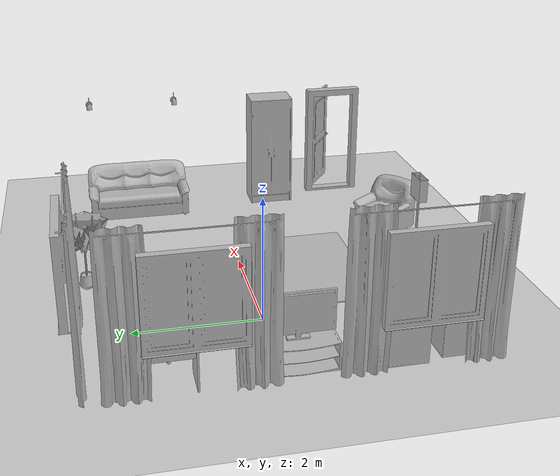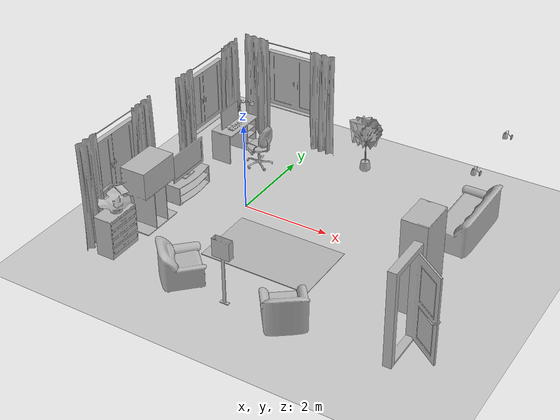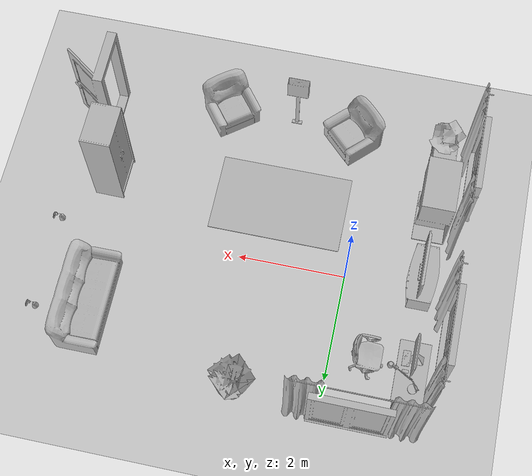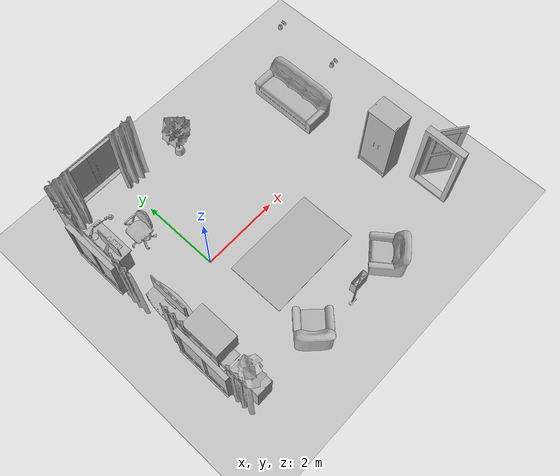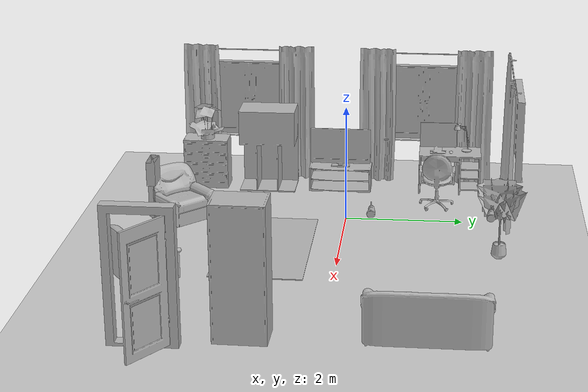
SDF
<sdf version="1.4">
 <world name="default">
  <light name="sun" type="directional">
   <pose>0 0 10 0 -0 0</pose>
   <diffuse>0.8 0.8 0.8 1</diffuse>
   <specular>0.2 0.2 0.2 1</specular>
   <attenuation>
    <range>1000</range>
    <constant>0.9</constant>
    <linear>0.01</linear>
    <quadratic>0.001</quadratic>
   </attenuation>
   <direction>-0.5 0.1 -0.9</direction>
  </light>
  <model name="ground_plane">
   <static>1</static>
   <link name="link">
    <collision name="collision">
     <geometry><plane><normal>0 0 1</normal><size>100 100</size></plane></geometry>
     <surface><friction><ode><mu>100</mu><mu2>50</mu2></ode></friction></surface>
    </collision>
    <visual name="visual">
     <cast_shadows>0</cast_shadows>
     <geometry><plane><normal>0 0 1</normal><size>100 100</size></plane></geometry>
     <material>
      <script><uri>file://media/materials/scripts/gazebo.material</uri><name>Gazebo/Grey</name></script>
     </material>
    </visual>
    <velocity_decay><linear>0</linear><angular>0</angular></velocity_decay>
   </link>
  </model>
  <physics type="ode">
   <max_step_size>0.001</max_step_size>
   <real_time_factor>1</real_time_factor>
   <real_time_update_rate>1000</real_time_update_rate>
   <gravity>0 0 -9.8</gravity>
  </physics>
  <scene><ambient>0.4 0.4 0.4 1</ambient><background>0.7 0.7 0.7 1</background><shadows>1</shadows></scene>
  <spherical_coordinates>
   <surface_model>EARTH_WGS84</surface_model>
   <latitude_deg>0</latitude_deg>
   <longitude_deg>0</longitude_deg>
   <elevation>0</elevation>
   <heading_deg>0</heading_deg>
  </spherical_coordinates>
  <model name="209_0">
   <pose>-1.93955 -1.90846 0.83 0 -0 0</pose>
   <static>1</static>
   <link name="link">
    <collision name="collision"><geometry><box><size>0.175 1.4 2</size></box></geometry></collision>
    <visual name="visual"><geometry><mesh><uri>model://209/209.dae</uri></mesh></geometry></visual>
    <velocity_decay><linear>0</linear><angular>0</angular></velocity_decay>
   </link>
  </model>
  <model name="209_1">
   <pose>-1.92823 1.25954 0.83 0 -0 0</pose>
   <static>1</static>
   <link name="link">
    <collision name="collision"><geometry><box><size>0.175 1.4 2</size></box></geometry></collision>
    <visual name="visual"><geometry><mesh><uri>model://209/209.dae</uri></mesh></geometry></visual>
    <velocity_decay><linear>0</linear><angular>0</angular></velocity_decay>
   </link>
  </model>
  <model name="209_2">
   <pose>-0.505384 2.90712 0.83 0 0 -1.5708</pose>
   <static>1</static>
   <link name="link">
    <collision name="collision"><geometry><box><size>0.175 1.4 2</size></box></geometry></collision>
    <visual name="visual"><geometry><mesh><uri>model://209/209.dae</uri></mesh></geometry></visual>
    <velocity_decay><linear>0</linear><angular>0</angular></velocity_decay>
   </link>
  </model>
  <model name="692_0">
   <pose>4.47065 1.49954 0.03 0 -0 3.14159</pose>
   <static>1</static>
   <link name="link">
    <collision name="collision"><geometry><box><size>0.900053 1.88 2</size></box></geometry></collision>
    <visual name="visual"><geometry><mesh><uri>model://692/692.dae</uri></mesh></geometry></visual>
    <velocity_decay><linear>0</linear><angular>0</angular></velocity_decay>
   </link>
  </model>
  <model name="693_0">
   <pose>2.78589 -2.91689 0.03 0 -0 2.22294</pose>
   <static>1</static>
   <link name="link">
    <collision name="collision"><geometry><box><size>0.900053 0.9 2</size></box></geometry></collision>
    <visual name="visual"><geometry><mesh><uri>model://693/693.dae</uri></mesh></geometry></visual>
    <velocity_decay><linear>0</linear><angular>0</angular></velocity_decay>
   </link>
  </model>
  <model name="693_1">
   <pose>0.352531 -2.82249 0.03 0 -0 0.785398</pose>
   <static>1</static>
   <link name="link">
    <collision name="collision"><geometry><box><size>0.900053 0.9 2</size></box></geometry></collision>
    <visual name="visual"><geometry><mesh><uri>model://693/693.dae</uri></mesh></geometry></visual>
    <velocity_decay><linear>0</linear><angular>0</angular></velocity_decay>
   </link>
  </model>
  <model name="214_0">
   <pose>4.97311 -2.47246 0 0 0 -3.14159</pose>
   <static>1</static>
   <link name="link">
    <collision name="collision"><geometry><box><size>0.829998 1.03985 2</size></box></geometry></collision>
    <visual name="visual"><geometry><mesh><uri>model://214/214.dae</uri></mesh></geometry></visual>
    <velocity_decay><linear>0</linear><angular>0</angular></velocity_decay>
   </link>
  </model>
  <model name="266_0">
   <pose>4.67201 -1.1144 0.03 0 -0 3.13142</pose>
   <static>1</static>
   <link name="link">
    <collision name="collision"><geometry><box><size>0.550716 0.8 2</size></box></geometry></collision>
    <visual name="visual"><geometry><mesh><uri>model://266/266.dae</uri></mesh></geometry></visual>
    <velocity_decay><linear>0</linear><angular>0</angular></velocity_decay>
   </link>
  </model>
  <model name="397_0">
   <pose>-1.38039 -2.64046 0.03 0 -0 0</pose>
   <static>1</static>
   <link name="link">
    <collision name="collision"><geometry><box><size>0.449634 0.79977 2</size></box></geometry></collision>
    <visual name="visual"><geometry><mesh><uri>model://397/397.dae</uri></mesh></geometry></visual>
    <velocity_decay><linear>0</linear><angular>0</angular></velocity_decay>
   </link>
  </model>
  <model name="625_0">
   <pose>-1.84387 -1.90846 0.06 0 -0 0</pose>
   <static>1</static>
   <link name="link">
    <collision name="collision"><geometry><box><size>0.189588 2.419 2</size></box></geometry></collision>
    <visual name="visual"><geometry><mesh><uri>model://625/625.dae</uri></mesh></geometry></visual>
    <velocity_decay><linear>0</linear><angular>0</angular></velocity_decay>
   </link>
  </model>
  <model name="625_1">
   <pose>-1.82987 1.29554 0.06 0 -0 0</pose>
   <static>1</static>
   <link name="link">
    <collision name="collision"><geometry><box><size>0.189588 2.419 2</size></box></geometry></collision>
    <visual name="visual"><geometry><mesh><uri>model://625/625.dae</uri></mesh></geometry></visual>
    <velocity_decay><linear>0</linear><angular>0</angular></velocity_decay>
   </link>
  </model>
  <model name="625_2">
   <pose>-0.577381 2.77942 0.06 0 0 -1.5708</pose>
   <static>1</static>
   <link name="link">
    <collision name="collision"><geometry><box><size>0.189588 2.419 2</size></box></geometry></collision>
    <visual name="visual"><geometry><mesh><uri>model://625/625.dae</uri></mesh></geometry></visual>
    <velocity_decay><linear>0</linear><angular>0</angular></velocity_decay>
   </link>
  </model>
  <model name="198_0">
   <pose>-1.39983 -0.204463 0.03 0 0 -3.14159</pose>
   <static>1</static>
   <link name="link">
    <collision name="collision"><geometry><box><size>0.533104 1.11 2</size></box></geometry></collision>
    <visual name="visual"><geometry><mesh><uri>model://198/198.dae</uri></mesh></geometry></visual>
    <velocity_decay><linear>0</linear><angular>0</angular></velocity_decay>
   </link>
  </model>
  <model name="105_0">
   <pose>-1.44139 1.76354 0.03 0 -0 0</pose>
   <static>1</static>
   <link name="link">
    <collision name="collision"><geometry><box><size>0.55 1.1 2</size></box></geometry></collision>
    <visual name="visual"><geometry><mesh><uri>model://105/105.dae</uri></mesh></geometry></visual>
    <velocity_decay><linear>0</linear><angular>0</angular></velocity_decay>
   </link>
  </model>
  <model name="335_0">
   <pose>-0.673384 1.54754 0.03 0 -0 3.1311</pose>
   <static>1</static>
   <link name="link">
    <collision name="collision"><geometry><box><size>0.599914 0.62 2</size></box></geometry></collision>
    <visual name="visual"><geometry><mesh><uri>model://335/335.dae</uri></mesh></geometry></visual>
    <velocity_decay><linear>0</linear><angular>0</angular></velocity_decay>
   </link>
  </model>
  <model name="113_0">
   <pose>-1.35469 -0.204463 0.468594 0 -0 0</pose>
   <static>1</static>
   <link name="link">
    <collision name="collision"><geometry><box><size>0.1 1.07995 2</size></box></geometry></collision>
    <visual name="visual"><geometry><mesh><uri>model://113/113.dae</uri></mesh></geometry></visual>
    <velocity_decay><linear>0</linear><angular>0</angular></velocity_decay>
   </link>
  </model>
  <model name="189_0">
   <pose>-1.42938 1.54754 0.799689 0 -0 0</pose>
   <static>1</static>
   <link name="link">
    <collision name="collision"><geometry><box><size>0.359507 0.6495 2</size></box></geometry></collision>
    <visual name="visual"><geometry><mesh><uri>model://189/189.dae</uri></mesh></geometry></visual>
    <velocity_decay><linear>0</linear><angular>0</angular></velocity_decay>
   </link>
  </model>
  <model name="238_0">
   <pose>1.45559 -1.21548 0.03 0 0 -1.5708</pose>
   <static>1</static>
   <link name="link">
    <collision name="collision"><geometry><box><size>1.5 2.5 0</size></box></geometry></collision>
    <visual name="visual"><geometry><mesh><uri>model://238/238.dae</uri></mesh></geometry></visual>
    <velocity_decay><linear>0</linear><angular>0</angular></velocity_decay>
   </link>
  </model>
  <model name="341_0">
   <pose>-1.39119 -1.51246 0.03 0 -0 0</pose>
   <static>1</static>
   <link name="link">
    <collision name="collision"><geometry><box><size>0.6 1.00228 2</size></box></geometry></collision>
    <visual name="visual"><geometry><mesh><uri>model://341/341.dae</uri></mesh></geometry></visual>
    <velocity_decay><linear>0</linear><angular>0</angular></velocity_decay>
   </link>
  </model>
  <model name="124_0">
   <pose>4.89605 0.707541 2.03 0 0 -3.14159</pose>
   <static>1</static>
   <link name="link">
    <collision name="collision"><geometry><box><size>0.197654 0.12 2</size></box></geometry></collision>
    <visual name="visual"><geometry><mesh><uri>model://124/124.dae</uri></mesh></geometry></visual>
    <velocity_decay><linear>0</linear><angular>0</angular></velocity_decay>
   </link>
  </model>
  <model name="124_1">
   <pose>4.89348 2.30353 2.03 0 0 -3.14159</pose>
   <static>1</static>
   <link name="link">
    <collision name="collision"><geometry><box><size>0.197654 0.12 2</size></box></geometry></collision>
    <visual name="visual"><geometry><mesh><uri>model://124/124.dae</uri></mesh></geometry></visual>
    <velocity_decay><linear>0</linear><angular>0</angular></velocity_decay>
   </link>
  </model>
  <model name="515_0">
   <pose>-1.29519 1.97497 0.778458 0 0 -0.371321</pose>
   <static>1</static>
   <link name="link">
    <collision name="collision"><geometry><box><size>0.659706 0.179881 2</size></box></geometry></collision>
    <visual name="visual"><geometry><mesh><uri>model://515/515.dae</uri></mesh></geometry></visual>
    <velocity_decay><linear>0</linear><angular>0</angular></velocity_decay>
   </link>
  </model>
  <model name="524_0">
   <pose>1.49628 -3.01246 0.03 0 0 -1.5708</pose>
   <static>1</static>
   <link name="link">
    <collision name="collision"><geometry><box><size>0.149959 0.399932 2</size></box></geometry></collision>
    <visual name="visual"><geometry><mesh><uri>model://524/524.dae</uri></mesh></geometry></visual>
    <velocity_decay><linear>0</linear><angular>0</angular></velocity_decay>
   </link>
  </model>
  <model name="738_0">
   <pose>-1.35428 -2.62846 0.78 0 0 -1.5708</pose>
   <static>1</static>
   <link name="link">
    <collision name="collision"><geometry><box><size>0.661424 0.66645 2</size></box></geometry></collision>
    <visual name="visual"><geometry><mesh><uri>model://738/738.dae</uri></mesh></geometry></visual>
    <velocity_decay><linear>0</linear><angular>0</angular></velocity_decay>
   </link>
  </model>
  <model name="733_0">
   <pose>1.53124 2.58255 0.03 0 -0 0</pose>
   <static>1</static>
   <link name="link">
    <collision name="collision"><geometry><box><size>0.837339 0.806826 2</size></box></geometry></collision>
    <visual name="visual"><geometry><mesh><uri>model://733/733.dae</uri></mesh></geometry></visual>
    <velocity_decay><linear>0</linear><angular>0</angular></velocity_decay>
   </link>
  </model>
 </world>
</sdf>
